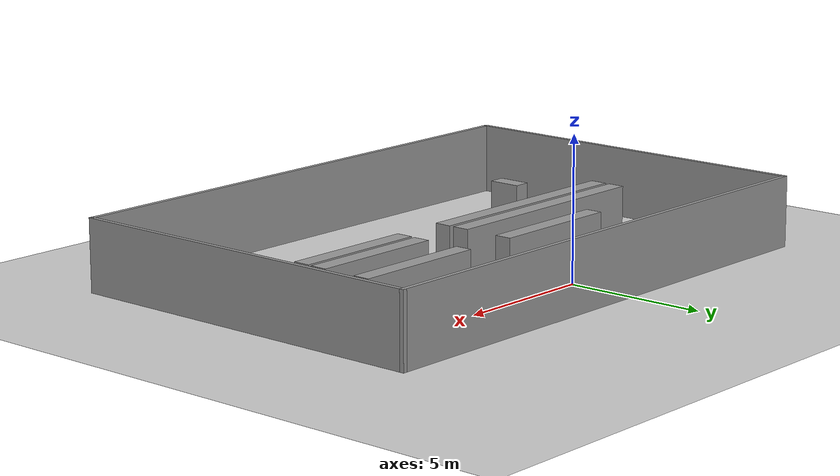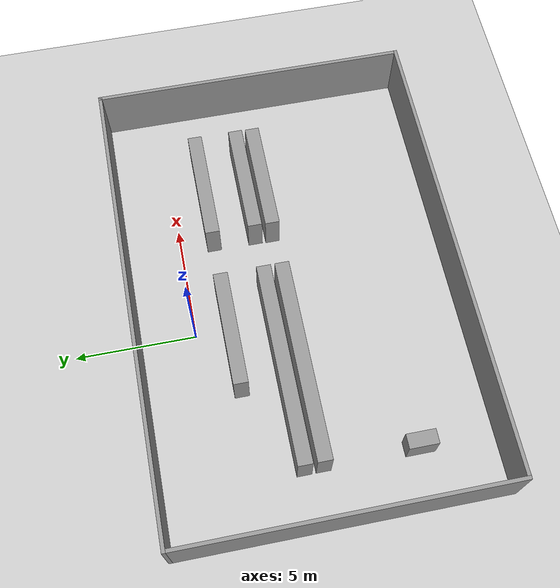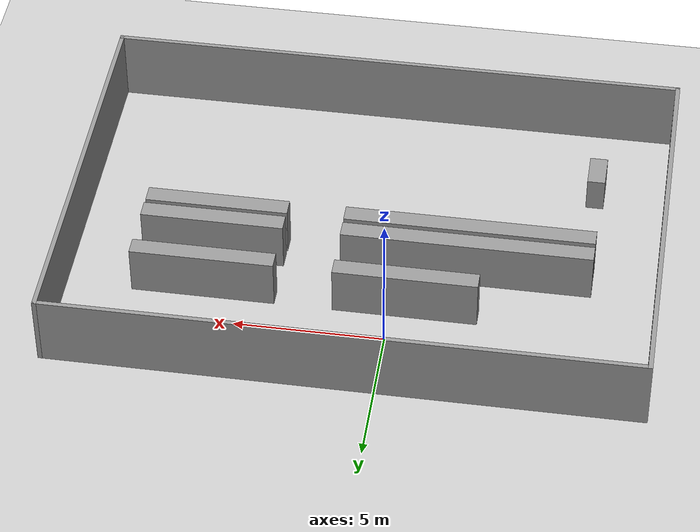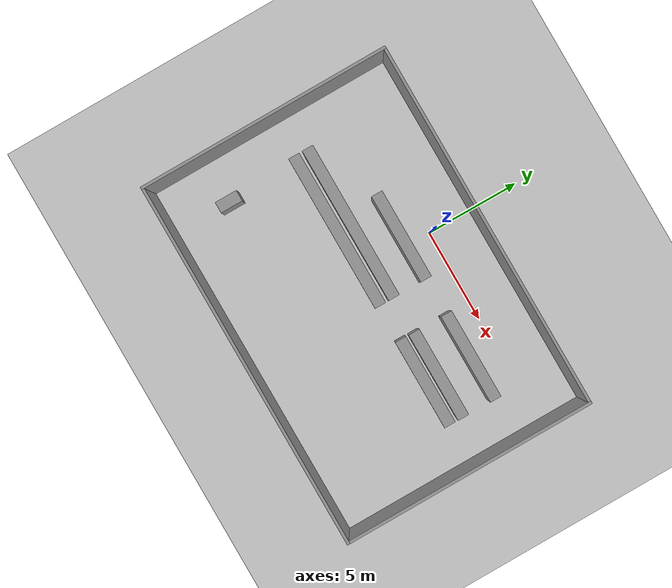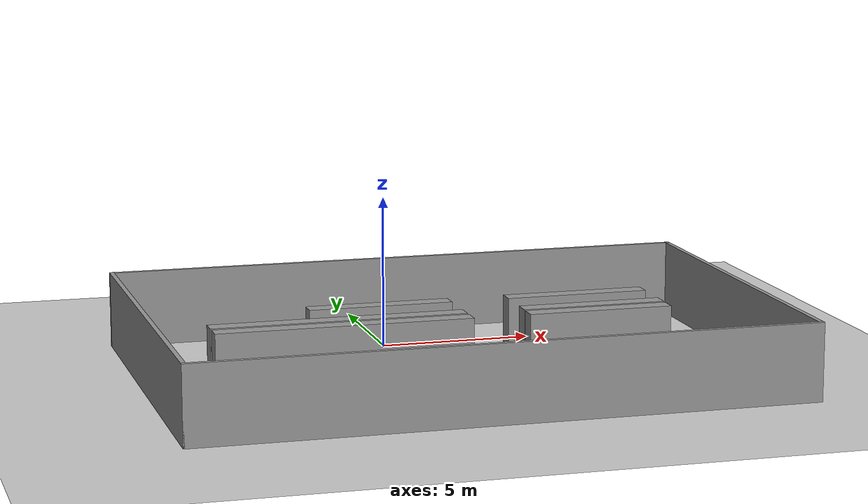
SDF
<sdf version="1.6">
 <world name="default">
  <light name="sun" type="directional">
   <pose>0 0 10 0 -0 0</pose>
   <diffuse>0.8 0.8 0.8 1</diffuse>
   <specular>0.2 0.2 0.2 1</specular>
   <attenuation>
    <range>1000</range>
    <constant>0.9</constant>
    <linear>0.01</linear>
    <quadratic>0.001</quadratic>
   </attenuation>
   <direction>-0.5 0.1 -0.9</direction>
  </light>
  <model name="ground_plane">
   <static>1</static>
   <link name="link">
    <collision name="collision">
     <geometry><plane><normal>0 0 1</normal><size>100 100</size></plane></geometry>
     <surface>
      <contact><collide_bitmask>65535</collide_bitmask></contact>
      <friction><ode><mu>100</mu><mu2>50</mu2></ode></friction>
     </surface>
    </collision>
    <visual name="visual">
     <cast_shadows>0</cast_shadows>
     <geometry><plane><normal>0 0 1</normal><size>100 100</size></plane></geometry>
     <material>
      <script><uri>file://media/materials/scripts/gazebo.material</uri><name>Gazebo/Grey</name></script>
     </material>
    </visual>
   </link>
  </model>
  <gravity>0 0 -9.8</gravity>
  <magnetic_field>6e-06 2.3e-05 -4.2e-05</magnetic_field>
  <atmosphere type="adiabatic"/>
  <physics name="default_physics" default="0" type="ode">
   <max_step_size>0.001</max_step_size>
   <real_time_factor>1</real_time_factor>
   <real_time_update_rate>1000</real_time_update_rate>
  </physics>
  <scene><ambient>0.4 0.4 0.4 1</ambient><background>0.7 0.7 0.7 1</background><shadows>1</shadows></scene>
  <audio><device>default</device></audio>
  <spherical_coordinates>
   <surface_model>EARTH_WGS84</surface_model>
   <latitude_deg>0</latitude_deg>
   <longitude_deg>0</longitude_deg>
   <elevation>0</elevation>
   <heading_deg>0</heading_deg>
  </spherical_coordinates>
  <model name="Hospital_layout_2">
   <pose>1.11125 -4.32147 0 0 -0 0</pose>
   <link name="Wall_0">
    <collision name="Wall_0_Collision">
     <geometry><box><size>4.8 0.6 1.73</size></box></geometry>
     <pose>0 0 0.865 0 -0 0</pose>
    </collision>
    <visual name="Wall_0_Visual">
     <pose>0 0 0.865 0 -0 0</pose>
     <geometry><box><size>4.8 0.6 1.73</size></box></geometry>
     <material>
      <script><uri>file://media/materials/scripts/gazebo.material</uri><name>Gazebo/Grey</name></script>
      <ambient>1 1 1 1</ambient>
     </material>
     <meta><layer>0</layer></meta>
    </visual>
    <pose>-1.62125 2.91147 0 0 -0 0</pose>
   </link>
   <link name="Wall_10">
    <collision name="Wall_10_Collision">
     <geometry><box><size>8.4 0.6 1.73</size></box></geometry>
     <pose>0 0 0.865 0 -0 0</pose>
    </collision>
    <visual name="Wall_10_Visual">
     <pose>0 0 0.865 0 -0 0</pose>
     <geometry><box><size>8.4 0.6 1.73</size></box></geometry>
     <material>
      <script><uri>file://media/materials/scripts/gazebo.material</uri><name>Gazebo/Grey</name></script>
      <ambient>1 1 1 1</ambient>
     </material>
     <meta><layer>0</layer></meta>
    </visual>
    <pose>-3.41941 0.348019 0 0 -0 0</pose>
   </link>
   <link name="Wall_12">
    <collision name="Wall_12_Collision">
     <geometry><box><size>4.8 0.6 1.73</size></box></geometry>
     <pose>0 0 0.865 0 -0 0</pose>
    </collision>
    <visual name="Wall_12_Visual">
     <pose>0 0 0.865 0 -0 0</pose>
     <geometry><box><size>4.8 0.6 1.73</size></box></geometry>
     <material>
      <script><uri>file://media/materials/scripts/gazebo.material</uri><name>Gazebo/Grey</name></script>
      <ambient>1 1 1 1</ambient>
     </material>
     <meta><layer>0</layer></meta>
    </visual>
    <pose>5.08263 0.365449 0 0 -0 0</pose>
   </link>
   <link name="Wall_14">
    <collision name="Wall_14_Collision">
     <geometry><box><size>1.2 0.6 1.2</size></box></geometry>
     <pose>0 0 0.6 0 -0 0</pose>
    </collision>
    <visual name="Wall_14_Visual">
     <pose>0 0 0.6 0 -0 0</pose>
     <geometry><box><size>1.2 0.6 1.2</size></box></geometry>
     <material>
      <script><uri>file://media/materials/scripts/gazebo.material</uri><name>Gazebo/Grey</name></script>
      <ambient>1 1 1 1</ambient>
     </material>
     <meta><layer>0</layer></meta>
    </visual>
    <pose>-7.369 -3.53657 0 0 -0 -1.5708</pose>
   </link>
   <link name="Wall_16">
    <collision name="Wall_16_Collision">
     <geometry><box><size>13.5 0.15 2.5</size></box></geometry>
     <pose>0 0 1.25 0 -0 0</pose>
    </collision>
    <visual name="Wall_16_Visual">
     <pose>0 0 1.25 0 -0 0</pose>
     <geometry><box><size>13.5 0.15 2.5</size></box></geometry>
     <material>
      <script><uri>file://media/materials/scripts/gazebo.material</uri><name>Gazebo/Grey</name></script>
      <ambient>1 1 1 1</ambient>
     </material>
     <meta><layer>0</layer></meta>
    </visual>
    <pose>-9.8 0 0 0 -0 -1.5708</pose>
   </link>
   <link name="Wall_17">
    <collision name="Wall_17_Collision">
     <geometry><box><size>19.75 0.15 2.5</size></box></geometry>
     <pose>0 0 1.25 0 -0 0</pose>
    </collision>
    <visual name="Wall_17_Visual">
     <pose>0 0 1.25 0 -0 0</pose>
     <geometry><box><size>19.75 0.15 2.5</size></box></geometry>
     <material>
      <script><uri>file://media/materials/scripts/gazebo.material</uri><name>Gazebo/Grey</name></script>
      <ambient>1 1 1 1</ambient>
     </material>
     <meta><layer>0</layer></meta>
    </visual>
    <pose>0 -6.675 0 0 -0 0</pose>
   </link>
   <link name="Wall_18">
    <collision name="Wall_18_Collision">
     <geometry><box><size>13.5 0.15 2.5</size></box></geometry>
     <pose>0 0 1.25 0 -0 0</pose>
    </collision>
    <visual name="Wall_18_Visual">
     <pose>0 0 1.25 0 -0 0</pose>
     <geometry><box><size>13.5 0.15 2.5</size></box></geometry>
     <material>
      <script><uri>file://media/materials/scripts/gazebo.material</uri><name>Gazebo/Grey</name></script>
      <ambient>1 1 1 1</ambient>
     </material>
     <meta><layer>0</layer></meta>
    </visual>
    <pose>9.8 0 0 0 -0 1.5708</pose>
   </link>
   <link name="Wall_19">
    <collision name="Wall_19_Collision">
     <geometry><box><size>19.75 0.15 2.5</size></box></geometry>
     <pose>0 0 1.25 0 -0 0</pose>
    </collision>
    <visual name="Wall_19_Visual">
     <pose>0 0 1.25 0 -0 0</pose>
     <geometry><box><size>19.75 0.15 2.5</size></box></geometry>
     <material>
      <script><uri>file://media/materials/scripts/gazebo.material</uri><name>Gazebo/Grey</name></script>
      <ambient>1 1 1 1</ambient>
     </material>
     <meta><layer>0</layer></meta>
    </visual>
    <pose>0 6.675 0 0 -0 3.14159</pose>
   </link>
   <link name="Wall_4">
    <collision name="Wall_4_Collision">
     <geometry><box><size>4.8 0.6 1.73</size></box></geometry>
     <pose>0 0 0.865 0 -0 0</pose>
    </collision>
    <visual name="Wall_4_Visual">
     <pose>0 0 0.865 0 -0 0</pose>
     <geometry><box><size>4.8 0.6 1.73</size></box></geometry>
     <material>
      <script><uri>file://media/materials/scripts/gazebo.material</uri><name>Gazebo/Grey</name></script>
      <ambient>1 1 1 1</ambient>
     </material>
     <meta><layer>0</layer></meta>
    </visual>
    <pose>5.11875 2.91147 0 0 -0 0</pose>
   </link>
   <link name="Wall_6">
    <collision name="Wall_6_Collision">
     <geometry><box><size>8.4 0.6 1.73</size></box></geometry>
     <pose>0 0 0.865 0 -0 0</pose>
    </collision>
    <visual name="Wall_6_Visual">
     <pose>0 0 0.865 0 -0 0</pose>
     <geometry><box><size>8.4 0.6 1.73</size></box></geometry>
     <material>
      <script><uri>file://media/materials/scripts/gazebo.material</uri><name>Gazebo/Grey</name></script>
      <ambient>1 1 1 1</ambient>
     </material>
     <meta><layer>0</layer></meta>
    </visual>
    <pose>-3.42125 1.11147 0 0 -0 0</pose>
   </link>
   <link name="Wall_8">
    <collision name="Wall_8_Collision">
     <geometry><box><size>4.8 0.6 1.73</size></box></geometry>
     <pose>0 0 0.865 0 -0 0</pose>
    </collision>
    <visual name="Wall_8_Visual">
     <pose>0 0 0.865 0 -0 0</pose>
     <geometry><box><size>4.8 0.6 1.73</size></box></geometry>
     <material>
      <script><uri>file://media/materials/scripts/gazebo.material</uri><name>Gazebo/Grey</name></script>
      <ambient>1 1 1 1</ambient>
     </material>
     <meta><layer>0</layer></meta>
    </visual>
    <pose>5.10428 1.11014 0 0 -0 0</pose>
   </link>
   <static>1</static>
  </model>
 </world>
</sdf>
